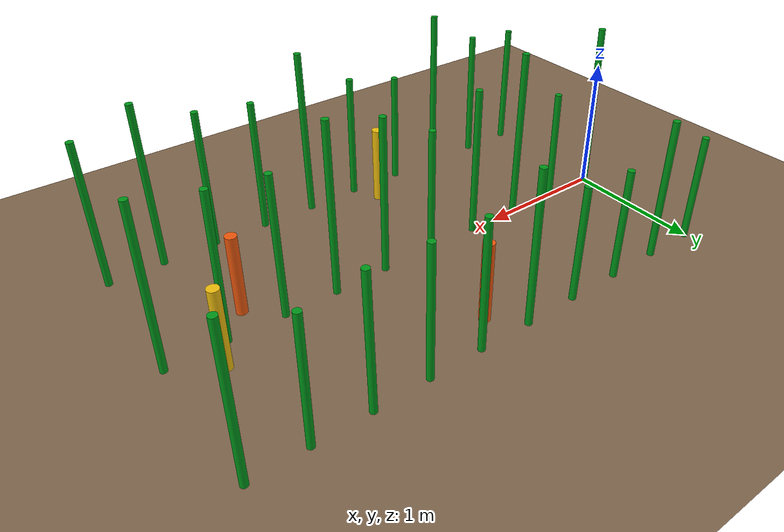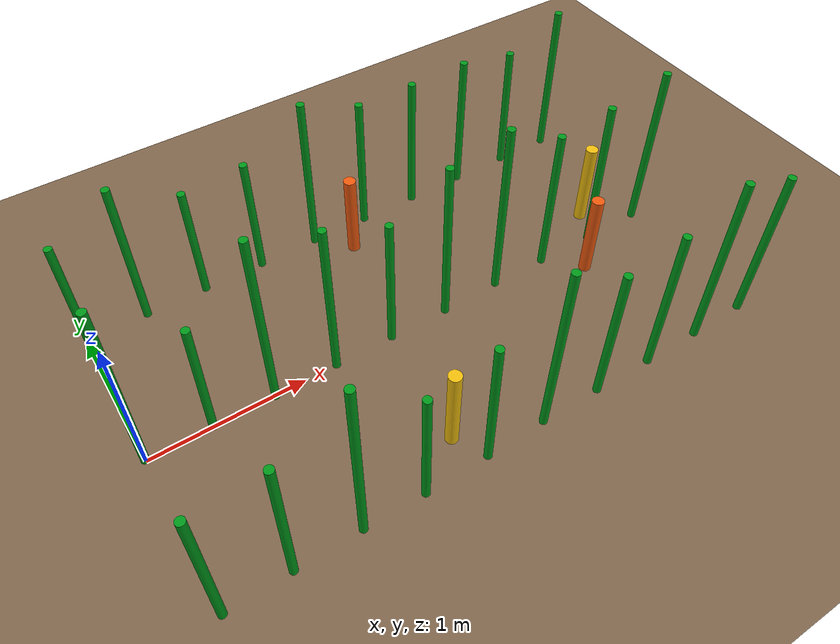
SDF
<?xml version="1.0" ?>
<sdf version="1.8">
  <world name="corn_field">
    <!-- Spherical Coordinates for GPS NavSat Sensor -->
    <spherical_coordinates>
      <surface_model>EARTH_WGS84</surface_model>
      <world_frame_orientation>ENU</world_frame_orientation>
      <latitude_deg>10.775667</latitude_deg>
      <longitude_deg>106.670889</longitude_deg>
      <elevation>10.0</elevation>
      <heading_deg>0</heading_deg>
    </spherical_coordinates>

    <!-- Physics and core systems plugins -->
    <plugin
      filename="gz-sim-physics-system"
      name="gz::sim::systems::Physics">
    </plugin>
    <plugin
      filename="gz-sim-user-commands-system"
      name="gz::sim::systems::UserCommands">
    </plugin>
    <plugin
      filename="gz-sim-scene-broadcaster-system"
      name="gz::sim::systems::SceneBroadcaster">
    </plugin>
    <plugin
      filename="gz-sim-sensors-system"
      name="gz::sim::systems::Sensors">
      <render_engine>ogre2</render_engine>
    </plugin>

    <!-- Sunlight -->
    <light type="directional" name="sun">
      <cast_shadows>true</cast_shadows>
      <pose>0 0 10 0 0 0</pose>
      <diffuse>0.8 0.8 0.8 1</diffuse>
      <specular>0.2 0.2 0.2 1</specular>
      <attenuation>
        <range>1000</range>
        <constant>0.9</constant>
        <linear>0.01</linear>
        <quadratic>0.001</quadratic>
      </attenuation>
      <direction>-0.5 0.1 -0.9</direction>
    </light>

    <!-- Ground Plane -->
    <model name="ground_plane">
      <static>true</static>
      <link name="link">
        <collision name="collision">
          <geometry>
            <plane>
              <normal>0 0 1</normal>
              <size>100 100</size>
            </plane>
          </geometry>
          <surface>
            <friction>
              <ode>
                <mu>1.0</mu>
                <mu2>1.0</mu2>
              </ode>
            </friction>
          </surface>
        </collision>
        <visual name="visual">
          <geometry>
            <plane>
              <normal>0 0 1</normal>
              <size>100 100</size>
            </plane>
          </geometry>
          <material>
            <ambient>0.5 0.4 0.3 1</ambient>
            <diffuse>0.5 0.4 0.3 1</diffuse>
            <specular>0.1 0.1 0.1 1</specular>
          </material>
        </visual>
      </link>
    </model>

    <!-- Corn Stalk 0 -->
    <model name="corn_stalk_0">
      <static>true</static>
      <pose>-0.002 -1.000 0.492 -0.010 0.007 1.876</pose>
      <link name="link">
        <collision name="collision">
          <geometry>
            <cylinder>
              <radius>0.005</radius>
              <length>0.984</length>
            </cylinder>
          </geometry>
        </collision>
        <visual name="visual">
          <geometry>
            <cylinder>
              <radius>0.025</radius>
              <length>0.984</length>
            </cylinder>
          </geometry>
          <material>
            <ambient>0.0 0.6 0.1 1</ambient>
            <diffuse>0.0 0.6 0.1 1</diffuse>
            <specular>0.0 0.1 0.0 1</specular>
          </material>
        </visual>
      </link>
    </model>
    <!-- Corn Stalk 1 -->
    <model name="corn_stalk_1">
      <static>true</static>
      <pose>0.394 -1.000 0.508 0.001 -0.007 0.781</pose>
      <link name="link">
        <collision name="collision">
          <geometry>
            <cylinder>
              <radius>0.005</radius>
              <length>1.016</length>
            </cylinder>
          </geometry>
        </collision>
        <visual name="visual">
          <geometry>
            <cylinder>
              <radius>0.025</radius>
              <length>1.016</length>
            </cylinder>
          </geometry>
          <material>
            <ambient>0.0 0.6 0.1 1</ambient>
            <diffuse>0.0 0.6 0.1 1</diffuse>
            <specular>0.0 0.1 0.0 1</specular>
          </material>
        </visual>
      </link>
    </model>
    <!-- Corn Stalk 2 -->
    <model name="corn_stalk_2">
      <static>true</static>
      <pose>0.801 -1.000 0.640 -0.007 0.001 2.230</pose>
      <link name="link">
        <collision name="collision">
          <geometry>
            <cylinder>
              <radius>0.005</radius>
              <length>1.279</length>
            </cylinder>
          </geometry>
        </collision>
        <visual name="visual">
          <geometry>
            <cylinder>
              <radius>0.025</radius>
              <length>1.279</length>
            </cylinder>
          </geometry>
          <material>
            <ambient>0.0 0.6 0.1 1</ambient>
            <diffuse>0.0 0.6 0.1 1</diffuse>
            <specular>0.0 0.1 0.0 1</specular>
          </material>
        </visual>
      </link>
    </model>
    <!-- Corn Stalk 3 -->
    <model name="corn_stalk_3">
      <static>true</static>
      <pose>1.192 -1.000 0.437 0.010 -0.002 3.166</pose>
      <link name="link">
        <collision name="collision">
          <geometry>
            <cylinder>
              <radius>0.005</radius>
              <length>0.874</length>
            </cylinder>
          </geometry>
        </collision>
        <visual name="visual">
          <geometry>
            <cylinder>
              <radius>0.025</radius>
              <length>0.874</length>
            </cylinder>
          </geometry>
          <material>
            <ambient>0.0 0.6 0.1 1</ambient>
            <diffuse>0.0 0.6 0.1 1</diffuse>
            <specular>0.0 0.1 0.0 1</specular>
          </material>
        </visual>
      </link>
    </model>
    <!-- Corn Stalk 4 -->
    <model name="corn_stalk_4">
      <static>true</static>
      <pose>1.604 -1.000 0.485 -0.006 -0.003 0.148</pose>
      <link name="link">
        <collision name="collision">
          <geometry>
            <cylinder>
              <radius>0.005</radius>
              <length>0.970</length>
            </cylinder>
          </geometry>
        </collision>
        <visual name="visual">
          <geometry>
            <cylinder>
              <radius>0.025</radius>
              <length>0.970</length>
            </cylinder>
          </geometry>
          <material>
            <ambient>0.0 0.6 0.1 1</ambient>
            <diffuse>0.0 0.6 0.1 1</diffuse>
            <specular>0.0 0.1 0.0 1</specular>
          </material>
        </visual>
      </link>
    </model>
    <!-- Corn Stalk 5 -->
    <model name="corn_stalk_5">
      <static>true</static>
      <pose>2.009 -1.000 0.635 0.010 0.005 0.022</pose>
      <link name="link">
        <collision name="collision">
          <geometry>
            <cylinder>
              <radius>0.005</radius>
              <length>1.270</length>
            </cylinder>
          </geometry>
        </collision>
        <visual name="visual">
          <geometry>
            <cylinder>
              <radius>0.025</radius>
              <length>1.270</length>
            </cylinder>
          </geometry>
          <material>
            <ambient>0.0 0.6 0.1 1</ambient>
            <diffuse>0.0 0.6 0.1 1</diffuse>
            <specular>0.0 0.1 0.0 1</specular>
          </material>
        </visual>
      </link>
    </model>
    <!-- Corn Stalk 6 -->
    <model name="corn_stalk_6">
      <static>true</static>
      <pose>2.407 -1.000 0.504 0.005 -0.006 0.625</pose>
      <link name="link">
        <collision name="collision">
          <geometry>
            <cylinder>
              <radius>0.005</radius>
              <length>1.007</length>
            </cylinder>
          </geometry>
        </collision>
        <visual name="visual">
          <geometry>
            <cylinder>
              <radius>0.025</radius>
              <length>1.007</length>
            </cylinder>
          </geometry>
          <material>
            <ambient>0.0 0.6 0.1 1</ambient>
            <diffuse>0.0 0.6 0.1 1</diffuse>
            <specular>0.0 0.1 0.0 1</specular>
          </material>
        </visual>
      </link>
    </model>
    <!-- Corn Stalk 7 -->
    <model name="corn_stalk_7">
      <static>true</static>
      <pose>2.808 -1.000 0.531 0.002 0.005 1.462</pose>
      <link name="link">
        <collision name="collision">
          <geometry>
            <cylinder>
              <radius>0.005</radius>
              <length>1.062</length>
            </cylinder>
          </geometry>
        </collision>
        <visual name="visual">
          <geometry>
            <cylinder>
              <radius>0.025</radius>
              <length>1.062</length>
            </cylinder>
          </geometry>
          <material>
            <ambient>0.0 0.6 0.1 1</ambient>
            <diffuse>0.0 0.6 0.1 1</diffuse>
            <specular>0.0 0.1 0.0 1</specular>
          </material>
        </visual>
      </link>
    </model>
    <!-- Corn Stalk 8 -->
    <model name="corn_stalk_8">
      <static>true</static>
      <pose>3.204 -1.000 0.618 0.006 0.006 1.460</pose>
      <link name="link">
        <collision name="collision">
          <geometry>
            <cylinder>
              <radius>0.005</radius>
              <length>1.237</length>
            </cylinder>
          </geometry>
        </collision>
        <visual name="visual">
          <geometry>
            <cylinder>
              <radius>0.025</radius>
              <length>1.237</length>
            </cylinder>
          </geometry>
          <material>
            <ambient>0.0 0.6 0.1 1</ambient>
            <diffuse>0.0 0.6 0.1 1</diffuse>
            <specular>0.0 0.1 0.0 1</specular>
          </material>
        </visual>
      </link>
    </model>
    <!-- Corn Stalk 9 -->
    <model name="corn_stalk_9">
      <static>true</static>
      <pose>3.594 -1.000 0.547 0.006 0.001 1.168</pose>
      <link name="link">
        <collision name="collision">
          <geometry>
            <cylinder>
              <radius>0.005</radius>
              <length>1.094</length>
            </cylinder>
          </geometry>
        </collision>
        <visual name="visual">
          <geometry>
            <cylinder>
              <radius>0.025</radius>
              <length>1.094</length>
            </cylinder>
          </geometry>
          <material>
            <ambient>0.0 0.6 0.1 1</ambient>
            <diffuse>0.0 0.6 0.1 1</diffuse>
            <specular>0.0 0.1 0.0 1</specular>
          </material>
        </visual>
      </link>
    </model>
    <!-- Corn Stalk 10 -->
    <model name="corn_stalk_10">
      <static>true</static>
      <pose>0.000 0.000 0.646 0.009 -0.009 1.031</pose>
      <link name="link">
        <collision name="collision">
          <geometry>
            <cylinder>
              <radius>0.005</radius>
              <length>1.292</length>
            </cylinder>
          </geometry>
        </collision>
        <visual name="visual">
          <geometry>
            <cylinder>
              <radius>0.025</radius>
              <length>1.292</length>
            </cylinder>
          </geometry>
          <material>
            <ambient>0.0 0.6 0.1 1</ambient>
            <diffuse>0.0 0.6 0.1 1</diffuse>
            <specular>0.0 0.1 0.0 1</specular>
          </material>
        </visual>
      </link>
    </model>
    <!-- Corn Stalk 11 -->
    <model name="corn_stalk_11">
      <static>true</static>
      <pose>0.407 0.000 0.439 -0.007 -0.005 3.388</pose>
      <link name="link">
        <collision name="collision">
          <geometry>
            <cylinder>
              <radius>0.005</radius>
              <length>0.878</length>
            </cylinder>
          </geometry>
        </collision>
        <visual name="visual">
          <geometry>
            <cylinder>
              <radius>0.025</radius>
              <length>0.878</length>
            </cylinder>
          </geometry>
          <material>
            <ambient>0.0 0.6 0.1 1</ambient>
            <diffuse>0.0 0.6 0.1 1</diffuse>
            <specular>0.0 0.1 0.0 1</specular>
          </material>
        </visual>
      </link>
    </model>
    <!-- Corn Stalk 12 -->
    <model name="corn_stalk_12">
      <static>true</static>
      <pose>0.796 0.000 0.649 -0.009 0.004 0.494</pose>
      <link name="link">
        <collision name="collision">
          <geometry>
            <cylinder>
              <radius>0.005</radius>
              <length>1.297</length>
            </cylinder>
          </geometry>
        </collision>
        <visual name="visual">
          <geometry>
            <cylinder>
              <radius>0.025</radius>
              <length>1.297</length>
            </cylinder>
          </geometry>
          <material>
            <ambient>0.0 0.6 0.1 1</ambient>
            <diffuse>0.0 0.6 0.1 1</diffuse>
            <specular>0.0 0.1 0.0 1</specular>
          </material>
        </visual>
      </link>
    </model>
    <!-- Corn Stalk 13 -->
    <model name="corn_stalk_13">
      <static>true</static>
      <pose>1.208 0.000 0.570 0.006 0.005 2.311</pose>
      <link name="link">
        <collision name="collision">
          <geometry>
            <cylinder>
              <radius>0.005</radius>
              <length>1.139</length>
            </cylinder>
          </geometry>
        </collision>
        <visual name="visual">
          <geometry>
            <cylinder>
              <radius>0.025</radius>
              <length>1.139</length>
            </cylinder>
          </geometry>
          <material>
            <ambient>0.0 0.6 0.1 1</ambient>
            <diffuse>0.0 0.6 0.1 1</diffuse>
            <specular>0.0 0.1 0.0 1</specular>
          </material>
        </visual>
      </link>
    </model>
    <!-- Corn Stalk 14 -->
    <model name="corn_stalk_14">
      <static>true</static>
      <pose>1.605 0.000 0.481 -0.000 -0.009 3.934</pose>
      <link name="link">
        <collision name="collision">
          <geometry>
            <cylinder>
              <radius>0.005</radius>
              <length>0.963</length>
            </cylinder>
          </geometry>
        </collision>
        <visual name="visual">
          <geometry>
            <cylinder>
              <radius>0.025</radius>
              <length>0.963</length>
            </cylinder>
          </geometry>
          <material>
            <ambient>0.0 0.6 0.1 1</ambient>
            <diffuse>0.0 0.6 0.1 1</diffuse>
            <specular>0.0 0.1 0.0 1</specular>
          </material>
        </visual>
      </link>
    </model>
    <!-- Corn Stalk 15 -->
    <model name="corn_stalk_15">
      <static>true</static>
      <pose>2.002 0.000 0.592 -0.002 0.009 1.267</pose>
      <link name="link">
        <collision name="collision">
          <geometry>
            <cylinder>
              <radius>0.005</radius>
              <length>1.184</length>
            </cylinder>
          </geometry>
        </collision>
        <visual name="visual">
          <geometry>
            <cylinder>
              <radius>0.025</radius>
              <length>1.184</length>
            </cylinder>
          </geometry>
          <material>
            <ambient>0.0 0.6 0.1 1</ambient>
            <diffuse>0.0 0.6 0.1 1</diffuse>
            <specular>0.0 0.1 0.0 1</specular>
          </material>
        </visual>
      </link>
    </model>
    <!-- Corn Stalk 16 -->
    <model name="corn_stalk_16">
      <static>true</static>
      <pose>2.404 0.000 0.642 0.001 -0.008 1.036</pose>
      <link name="link">
        <collision name="collision">
          <geometry>
            <cylinder>
              <radius>0.005</radius>
              <length>1.284</length>
            </cylinder>
          </geometry>
        </collision>
        <visual name="visual">
          <geometry>
            <cylinder>
              <radius>0.025</radius>
              <length>1.284</length>
            </cylinder>
          </geometry>
          <material>
            <ambient>0.0 0.6 0.1 1</ambient>
            <diffuse>0.0 0.6 0.1 1</diffuse>
            <specular>0.0 0.1 0.0 1</specular>
          </material>
        </visual>
      </link>
    </model>
    <!-- Corn Stalk 17 -->
    <model name="corn_stalk_17">
      <static>true</static>
      <pose>2.795 0.000 0.530 -0.007 -0.004 3.375</pose>
      <link name="link">
        <collision name="collision">
          <geometry>
            <cylinder>
              <radius>0.005</radius>
              <length>1.060</length>
            </cylinder>
          </geometry>
        </collision>
        <visual name="visual">
          <geometry>
            <cylinder>
              <radius>0.025</radius>
              <length>1.060</length>
            </cylinder>
          </geometry>
          <material>
            <ambient>0.0 0.6 0.1 1</ambient>
            <diffuse>0.0 0.6 0.1 1</diffuse>
            <specular>0.0 0.1 0.0 1</specular>
          </material>
        </visual>
      </link>
    </model>
    <!-- Corn Stalk 18 -->
    <model name="corn_stalk_18">
      <static>true</static>
      <pose>3.190 0.000 0.552 -0.010 -0.000 1.161</pose>
      <link name="link">
        <collision name="collision">
          <geometry>
            <cylinder>
              <radius>0.005</radius>
              <length>1.104</length>
            </cylinder>
          </geometry>
        </collision>
        <visual name="visual">
          <geometry>
            <cylinder>
              <radius>0.025</radius>
              <length>1.104</length>
            </cylinder>
          </geometry>
          <material>
            <ambient>0.0 0.6 0.1 1</ambient>
            <diffuse>0.0 0.6 0.1 1</diffuse>
            <specular>0.0 0.1 0.0 1</specular>
          </material>
        </visual>
      </link>
    </model>
    <!-- Corn Stalk 19 -->
    <model name="corn_stalk_19">
      <static>true</static>
      <pose>3.606 0.000 0.598 -0.008 0.000 2.552</pose>
      <link name="link">
        <collision name="collision">
          <geometry>
            <cylinder>
              <radius>0.005</radius>
              <length>1.195</length>
            </cylinder>
          </geometry>
        </collision>
        <visual name="visual">
          <geometry>
            <cylinder>
              <radius>0.025</radius>
              <length>1.195</length>
            </cylinder>
          </geometry>
          <material>
            <ambient>0.0 0.6 0.1 1</ambient>
            <diffuse>0.0 0.6 0.1 1</diffuse>
            <specular>0.0 0.1 0.0 1</specular>
          </material>
        </visual>
      </link>
    </model>
    <!-- Corn Stalk 20 -->
    <model name="corn_stalk_20">
      <static>true</static>
      <pose>0.009 1.000 0.407 -0.002 -0.005 5.520</pose>
      <link name="link">
        <collision name="collision">
          <geometry>
            <cylinder>
              <radius>0.005</radius>
              <length>0.814</length>
            </cylinder>
          </geometry>
        </collision>
        <visual name="visual">
          <geometry>
            <cylinder>
              <radius>0.025</radius>
              <length>0.814</length>
            </cylinder>
          </geometry>
          <material>
            <ambient>0.0 0.6 0.1 1</ambient>
            <diffuse>0.0 0.6 0.1 1</diffuse>
            <specular>0.0 0.1 0.0 1</specular>
          </material>
        </visual>
      </link>
    </model>
    <!-- Corn Stalk 21 -->
    <model name="corn_stalk_21">
      <static>true</static>
      <pose>0.397 1.000 0.530 -0.002 -0.006 4.272</pose>
      <link name="link">
        <collision name="collision">
          <geometry>
            <cylinder>
              <radius>0.005</radius>
              <length>1.059</length>
            </cylinder>
          </geometry>
        </collision>
        <visual name="visual">
          <geometry>
            <cylinder>
              <radius>0.025</radius>
              <length>1.059</length>
            </cylinder>
          </geometry>
          <material>
            <ambient>0.0 0.6 0.1 1</ambient>
            <diffuse>0.0 0.6 0.1 1</diffuse>
            <specular>0.0 0.1 0.0 1</specular>
          </material>
        </visual>
      </link>
    </model>
    <!-- Corn Stalk 22 -->
    <model name="corn_stalk_22">
      <static>true</static>
      <pose>0.795 1.000 0.417 -0.002 0.004 2.042</pose>
      <link name="link">
        <collision name="collision">
          <geometry>
            <cylinder>
              <radius>0.005</radius>
              <length>0.834</length>
            </cylinder>
          </geometry>
        </collision>
        <visual name="visual">
          <geometry>
            <cylinder>
              <radius>0.025</radius>
              <length>0.834</length>
            </cylinder>
          </geometry>
          <material>
            <ambient>0.0 0.6 0.1 1</ambient>
            <diffuse>0.0 0.6 0.1 1</diffuse>
            <specular>0.0 0.1 0.0 1</specular>
          </material>
        </visual>
      </link>
    </model>
    <!-- Corn Stalk 23 -->
    <model name="corn_stalk_23">
      <static>true</static>
      <pose>1.199 1.000 0.434 -0.006 0.002 1.269</pose>
      <link name="link">
        <collision name="collision">
          <geometry>
            <cylinder>
              <radius>0.005</radius>
              <length>0.868</length>
            </cylinder>
          </geometry>
        </collision>
        <visual name="visual">
          <geometry>
            <cylinder>
              <radius>0.025</radius>
              <length>0.868</length>
            </cylinder>
          </geometry>
          <material>
            <ambient>0.0 0.6 0.1 1</ambient>
            <diffuse>0.0 0.6 0.1 1</diffuse>
            <specular>0.0 0.1 0.0 1</specular>
          </material>
        </visual>
      </link>
    </model>
    <!-- Corn Stalk 24 -->
    <model name="corn_stalk_24">
      <static>true</static>
      <pose>1.608 1.000 0.573 -0.003 -0.004 3.382</pose>
      <link name="link">
        <collision name="collision">
          <geometry>
            <cylinder>
              <radius>0.005</radius>
              <length>1.147</length>
            </cylinder>
          </geometry>
        </collision>
        <visual name="visual">
          <geometry>
            <cylinder>
              <radius>0.025</radius>
              <length>1.147</length>
            </cylinder>
          </geometry>
          <material>
            <ambient>0.0 0.6 0.1 1</ambient>
            <diffuse>0.0 0.6 0.1 1</diffuse>
            <specular>0.0 0.1 0.0 1</specular>
          </material>
        </visual>
      </link>
    </model>
    <!-- Corn Stalk 25 -->
    <model name="corn_stalk_25">
      <static>true</static>
      <pose>2.003 1.000 0.491 0.006 -0.005 2.682</pose>
      <link name="link">
        <collision name="collision">
          <geometry>
            <cylinder>
              <radius>0.005</radius>
              <length>0.982</length>
            </cylinder>
          </geometry>
        </collision>
        <visual name="visual">
          <geometry>
            <cylinder>
              <radius>0.025</radius>
              <length>0.982</length>
            </cylinder>
          </geometry>
          <material>
            <ambient>0.0 0.6 0.1 1</ambient>
            <diffuse>0.0 0.6 0.1 1</diffuse>
            <specular>0.0 0.1 0.0 1</specular>
          </material>
        </visual>
      </link>
    </model>
    <!-- Corn Stalk 26 -->
    <model name="corn_stalk_26">
      <static>true</static>
      <pose>2.400 1.000 0.493 0.001 0.003 0.427</pose>
      <link name="link">
        <collision name="collision">
          <geometry>
            <cylinder>
              <radius>0.005</radius>
              <length>0.986</length>
            </cylinder>
          </geometry>
        </collision>
        <visual name="visual">
          <geometry>
            <cylinder>
              <radius>0.025</radius>
              <length>0.986</length>
            </cylinder>
          </geometry>
          <material>
            <ambient>0.0 0.6 0.1 1</ambient>
            <diffuse>0.0 0.6 0.1 1</diffuse>
            <specular>0.0 0.1 0.0 1</specular>
          </material>
        </visual>
      </link>
    </model>
    <!-- Corn Stalk 27 -->
    <model name="corn_stalk_27">
      <static>true</static>
      <pose>2.804 1.000 0.500 -0.009 0.005 4.310</pose>
      <link name="link">
        <collision name="collision">
          <geometry>
            <cylinder>
              <radius>0.005</radius>
              <length>1.001</length>
            </cylinder>
          </geometry>
        </collision>
        <visual name="visual">
          <geometry>
            <cylinder>
              <radius>0.025</radius>
              <length>1.001</length>
            </cylinder>
          </geometry>
          <material>
            <ambient>0.0 0.6 0.1 1</ambient>
            <diffuse>0.0 0.6 0.1 1</diffuse>
            <specular>0.0 0.1 0.0 1</specular>
          </material>
        </visual>
      </link>
    </model>
    <!-- Corn Stalk 28 -->
    <model name="corn_stalk_28">
      <static>true</static>
      <pose>3.199 1.000 0.466 -0.005 0.005 3.018</pose>
      <link name="link">
        <collision name="collision">
          <geometry>
            <cylinder>
              <radius>0.005</radius>
              <length>0.933</length>
            </cylinder>
          </geometry>
        </collision>
        <visual name="visual">
          <geometry>
            <cylinder>
              <radius>0.025</radius>
              <length>0.933</length>
            </cylinder>
          </geometry>
          <material>
            <ambient>0.0 0.6 0.1 1</ambient>
            <diffuse>0.0 0.6 0.1 1</diffuse>
            <specular>0.0 0.1 0.0 1</specular>
          </material>
        </visual>
      </link>
    </model>
    <!-- Corn Stalk 29 -->
    <model name="corn_stalk_29">
      <static>true</static>
      <pose>3.591 1.000 0.556 -0.003 0.008 4.248</pose>
      <link name="link">
        <collision name="collision">
          <geometry>
            <cylinder>
              <radius>0.005</radius>
              <length>1.113</length>
            </cylinder>
          </geometry>
        </collision>
        <visual name="visual">
          <geometry>
            <cylinder>
              <radius>0.025</radius>
              <length>1.113</length>
            </cylinder>
          </geometry>
          <material>
            <ambient>0.0 0.6 0.1 1</ambient>
            <diffuse>0.0 0.6 0.1 1</diffuse>
            <specular>0.0 0.1 0.0 1</specular>
          </material>
        </visual>
      </link>
    </model>
    <!-- ZIGZAG OBSTACLES (Vật cản xếp zic-zac xa nhau dọc luống bắp)      -->

    <!-- Obstacle 1 (Hàng 1 - Lệch Trái: Robot né sang phải) -->
    <model name="obstacle_zigzag_1">
      <static>true</static>
      <pose>1.800 0.800 0.300 0 0 0</pose>
      <link name="link">
        <collision name="collision">
          <geometry>
            <cylinder>
              <radius>0.04</radius>
              <length>0.60</length>
            </cylinder>
          </geometry>
        </collision>
        <visual name="visual">
          <geometry>
            <cylinder>
              <radius>0.04</radius>
              <length>0.60</length>
            </cylinder>
          </geometry>
          <material>
            <ambient>0.95 0.35 0.05 1</ambient>
            <diffuse>0.95 0.35 0.05 1</diffuse>
            <specular>0.4 0.4 0.4 1</specular>
          </material>
        </visual>
      </link>
    </model>

    <!-- Obstacle 2 (Hàng 1 - Lệch Phải: Robot né sang trái) -->
    <model name="obstacle_zigzag_2">
      <static>true</static>
      <pose>3.300 0.200 0.300 0 0 0</pose>
      <link name="link">
        <collision name="collision">
          <geometry>
            <cylinder>
              <radius>0.04</radius>
              <length>0.60</length>
            </cylinder>
          </geometry>
        </collision>
        <visual name="visual">
          <geometry>
            <cylinder>
              <radius>0.04</radius>
              <length>0.60</length>
            </cylinder>
          </geometry>
          <material>
            <ambient>0.95 0.75 0.05 1</ambient>
            <diffuse>0.95 0.75 0.05 1</diffuse>
            <specular>0.4 0.4 0.4 1</specular>
          </material>
        </visual>
      </link>
    </model>

    <!-- Obstacle 3 (Hàng 2 - Lệch Trái theo chiều đi: Robot né sang phải) -->
    <model name="obstacle_zigzag_3">
      <static>true</static>
      <pose>3.000 -0.200 0.300 0 0 0</pose>
      <link name="link">
        <collision name="collision">
          <geometry>
            <cylinder>
              <radius>0.04</radius>
              <length>0.60</length>
            </cylinder>
          </geometry>
        </collision>
        <visual name="visual">
          <geometry>
            <cylinder>
              <radius>0.04</radius>
              <length>0.60</length>
            </cylinder>
          </geometry>
          <material>
            <ambient>0.95 0.35 0.05 1</ambient>
            <diffuse>0.95 0.35 0.05 1</diffuse>
            <specular>0.4 0.4 0.4 1</specular>
          </material>
        </visual>
      </link>
    </model>

    <!-- Obstacle 4 (Hàng 2 - Lệch Phải theo chiều đi: Robot né sang trái) -->
    <model name="obstacle_zigzag_4">
      <static>true</static>
      <pose>1.500 -0.800 0.300 0 0 0</pose>
      <link name="link">
        <collision name="collision">
          <geometry>
            <cylinder>
              <radius>0.04</radius>
              <length>0.60</length>
            </cylinder>
          </geometry>
        </collision>
        <visual name="visual">
          <geometry>
            <cylinder>
              <radius>0.04</radius>
              <length>0.60</length>
            </cylinder>
          </geometry>
          <material>
            <ambient>0.95 0.75 0.05 1</ambient>
            <diffuse>0.95 0.75 0.05 1</diffuse>
            <specular>0.4 0.4 0.4 1</specular>
          </material>
        </visual>
      </link>
    </model>
  </world>
</sdf>
